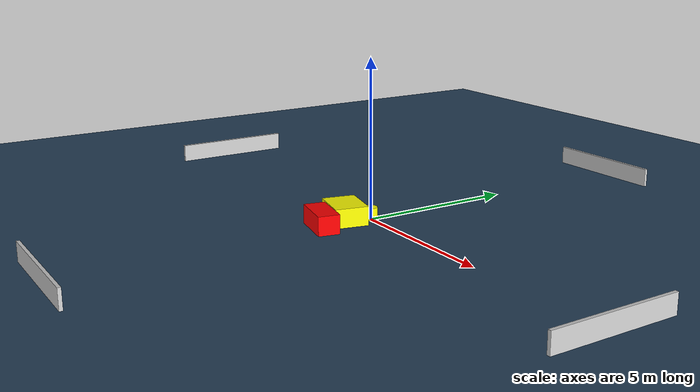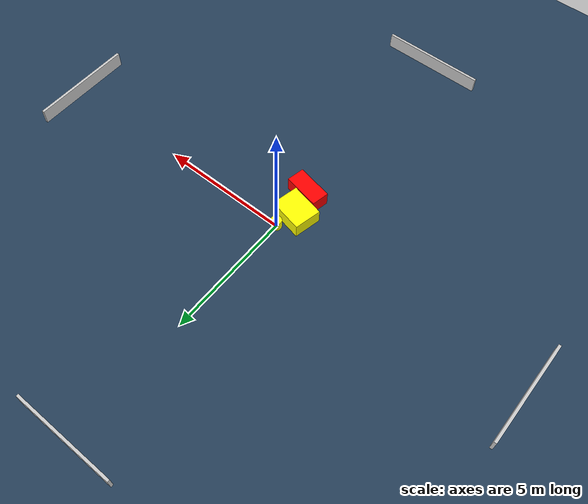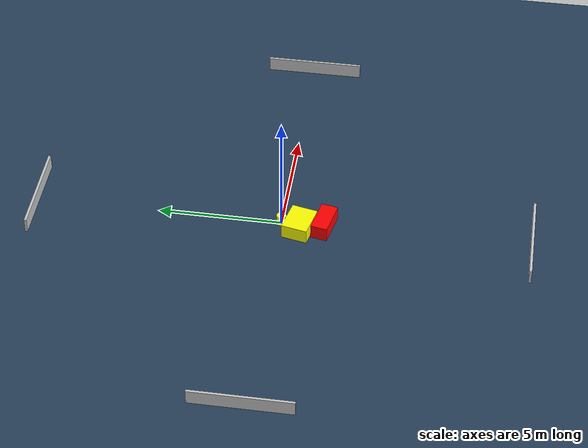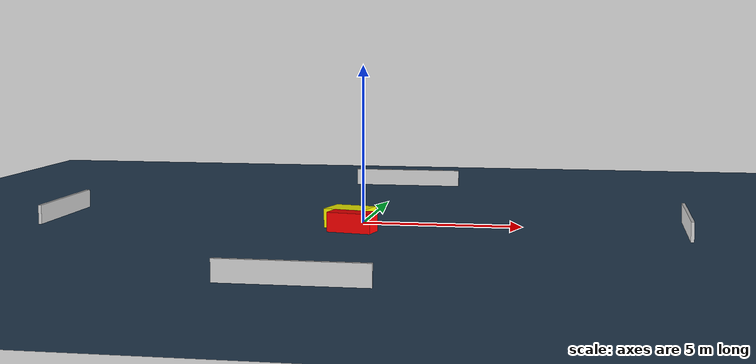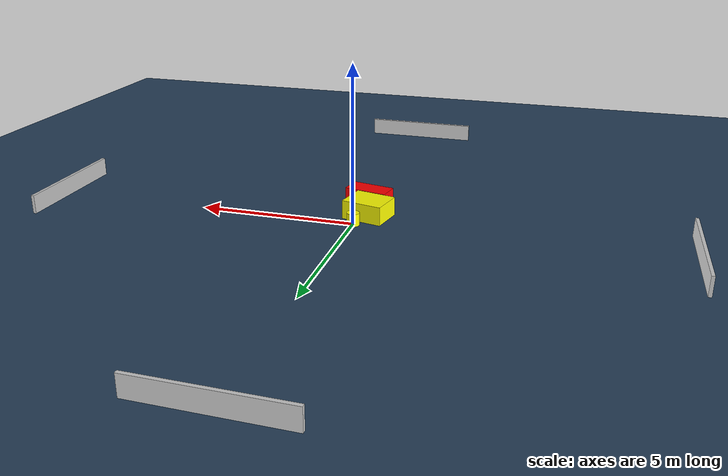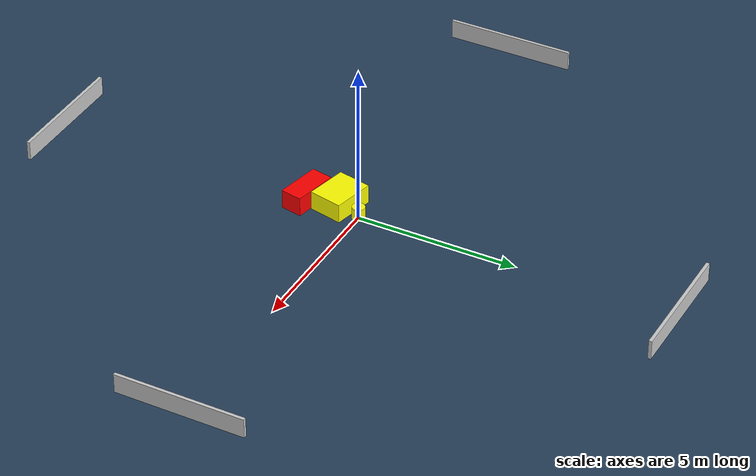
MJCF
<?xml version="1.0" ?>
<mujoco model="generated_environment">
  <option timestep="0.01" integrator="RK4" cone="elliptic"/>
  <default>
    <geom density="1"/>
  </default>
  <asset>
    <texture builtin="gradient" height="3072" name="skybox" rgb1="0.3 0.5 0.7" rgb2="0 0 0" type="skybox" width="512"/>
    <texture builtin="checker" height="300" name="groundplane" rgb1="0.2 0.3 0.4" rgb2="0.1 0.2 0.3" type="2d" width="300"/>
    <material name="groundplane" reflectance="0.2" texrepeat="5 5" texture="groundplane"/>
  </asset>
  <worldbody>
    <light dir="0 0 -1" directional="true" pos="0 0 1.5"/>
    <geom condim="3" friction="0.5 0.005 0.001" material="groundplane" name="floor" pos="0 0 0" size="0 0 0.05" type="plane"/>
    <body name="walls">
      <geom name="wall_1" condim="4" pos="-10.0 0.0 0.3" rgba="0.800000011920929 0.800000011920929 0.800000011920929 1.0" size="0.05 2.0 0.3" type="box"/>
      <geom name="wall_2" condim="4" pos="10.0 0.0 0.3" rgba="0.800000011920929 0.800000011920929 0.800000011920929 1.0" size="0.05 2.0 0.3" type="box"/>
      <geom name="wall_3" condim="4" pos="0.0 -10.0 0.3" rgba="0.800000011920929 0.800000011920929 0.800000011920929 1.0" size="2.0 0.05 0.3" type="box"/>
      <geom name="wall_4" condim="4" pos="0.0 10.0 0.3" rgba="0.800000011920929 0.800000011920929 0.800000011920929 1.0" size="2.0 0.05 0.3" type="box"/>
    </body>
    <body name="robot">
      <joint name="joint_x" type="slide" pos="0 0 0" axis="1 0 0"/>
      <joint name="joint_y" type="slide" pos="0 0 0" axis="0 1 0"/>
      <geom name="robot" type="cylinder" pos="0.0 0.0 0.2" size="0.2 0.2 0.0" mass="5.0" friction="1.0 0.005 0.0001" condim="4" rgba="1.0 1.0 0.0 1.0"/>
    </body>
    <body name="obstacle_1_movable">
      <geom name="obstacle_1_movable" condim="4" pos="-0.28323562523939455 -0.7633765818614251 0.3" euler="0 0 77.66137962858167" friction="0.0 0.005 0.001" rgba="1.0 1.0 0.0 1.0" size="0.5263042481712722 0.6572666290474836 0.3" type="box" mass="0.1"/>
      <joint type="free"/>
    </body>
    <body name="obstacle_2_static">
      <geom name="obstacle_2_static" condim="4" pos="-0.04204325382092655 -1.7281824793808553 0.3" euler="0 0 348.60522197120565" friction="0.0 0.005 0.001" rgba="1.0 0.0 0.0 1.0" size="0.7003414879771703 0.33770364499316174 0.3" type="box"/>
    </body>
  </worldbody>
  <actuator>
    <motor name="actuator_x" joint="joint_x" gear="1" ctrlrange="-1 1"/>
    <motor name="actuator_y" joint="joint_y" gear="1" ctrlrange="-1 1"/>
  </actuator>
</mujoco>
